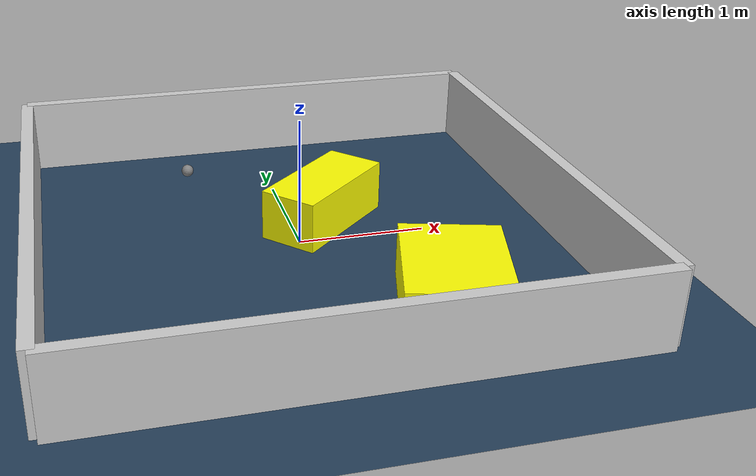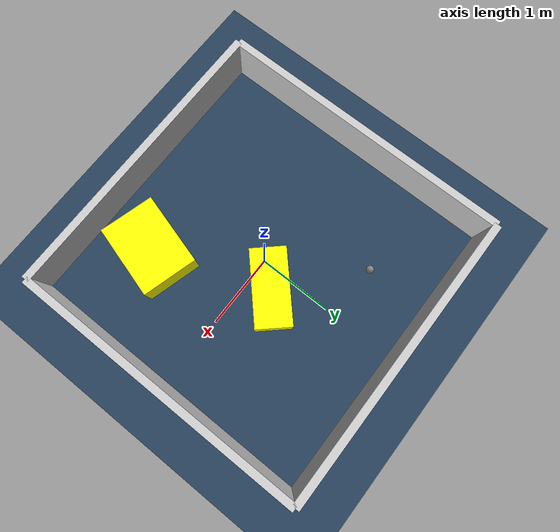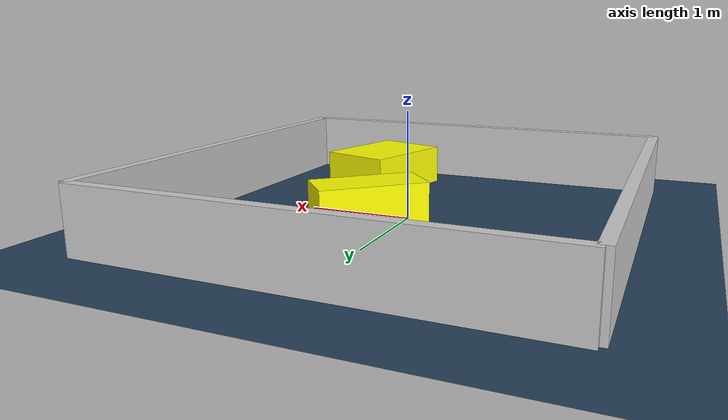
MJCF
<?xml version="1.0" ?>
<mujoco model="generated_environment">
  <option timestep="0.01" integrator="RK4" cone="elliptic"/>
  <default>
    <geom density="1"/>
  </default>
  <asset>
    <texture builtin="gradient" height="3072" rgb1="0.3 0.5 0.7" rgb2="0 0 0" type="skybox" width="512"/>
    <texture builtin="checker" height="300" mark="edge" markrgb="0.8 0.8 0.8" name="groundplane" rgb1="0.2 0.3 0.4" rgb2="0.1 0.2 0.3" type="2d" width="300"/>
    <material name="groundplane" reflectance="0.2" texrepeat="5 5" texture="groundplane" texuniform="true"/>
    <material name="robot" rgba="0.0 1.0 0.0 1"/>
  </asset>
  <worldbody>
    <light dir="0 0 -1" directional="true" pos="0 0 1.5"/>
    <geom condim="4" friction="1.0 0.005 0.001" material="groundplane" name="floor" size="0 0 0.05" type="plane"/>
    <body name="walls">
      <geom name="wall_1" condim="4" pos="-2.0 0.0 0.3" rgba="0.800000011920929 0.800000011920929 0.800000011920929 1.0" size="0.05 2.0 0.3" type="box"/>
      <geom name="wall_2" condim="4" pos="2.0 0.0 0.3" rgba="0.800000011920929 0.800000011920929 0.800000011920929 1.0" size="0.05 2.0 0.3" type="box"/>
      <geom name="wall_3" condim="4" pos="0.0 -2.0 0.3" rgba="0.800000011920929 0.800000011920929 0.800000011920929 1.0" size="2.0 0.05 0.3" type="box"/>
      <geom name="wall_4" condim="4" pos="0.0 2.0 0.3" rgba="0.800000011920929 0.800000011920929 0.800000011920929 1.0" size="2.0 0.05 0.3" type="box"/>
    </body>
    <body name="robot">
      <joint name="joint_x" type="slide" pos="0 0 0" axis="1 0 0"/>
      <joint name="joint_y" type="slide" pos="0 0 0" axis="0 1 0"/>
      <geom name="robot" type="sphere" pos="-0.7136927925976206 1.1311450564305185 0.2" size="0.05" mass="5." friction="1.0 0.005 0.0001" condim="4"/>
      <site name="sensor_ball"/>
    </body>
    <body name="obstacle_1_movable">
      <geom name="obstacle_1_movable" condim="4" pos="0.7909255647735365 -1.2086929514199862 0.2" euler="0 0 344.04128321681395" friction="1.0 0.005 0.001" rgba="1 1 0 1" size="0.3700439593948889 0.49762986159791256 0.2" type="box" mass="0.1"/>
      <joint type="free"/>
    </body>
    <body name="obstacle_2_movable">
      <geom name="obstacle_2_movable" condim="4" pos="0.2598405767019183 0.30319527829472426 0.2" euler="0 0 312.5184084744121" friction="1.0 0.005 0.001" rgba="1 1 0 1" size="0.23425831467432406 0.4990669468896918 0.2" type="box" mass="0.1"/>
      <joint type="free"/>
    </body>
  </worldbody>
  <actuator>
    <motor name="actuator_x" joint="joint_x" gear="1" ctrlrange="-1 1"/>
    <motor name="actuator_y" joint="joint_y" gear="1" ctrlrange="-1 1"/>
  </actuator>
</mujoco>
